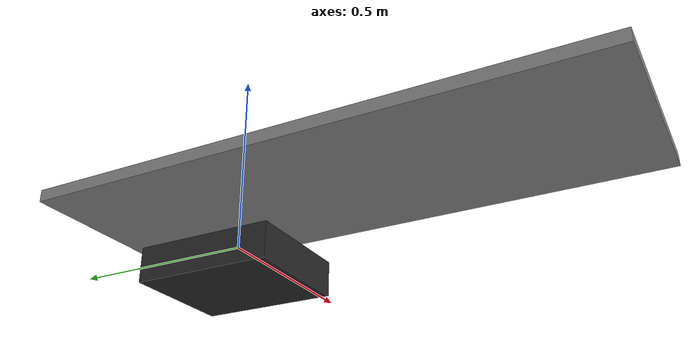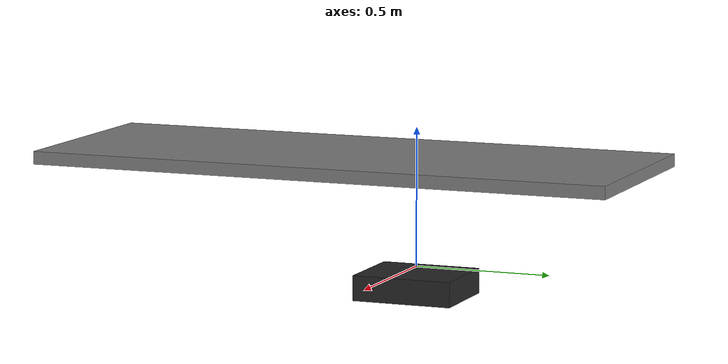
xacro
<?xml version="1.0" encoding="utf-8"?>
<robot xmlns:xacro="http://www.ros.org/wiki/xacro" name="panda">
  <xacro:property name="in2m" value="0.0254"/>
  <xacro:property name="ft2m" value="0.3048"/>
  <xacro:property name="tablex" value="${0.7620}"/>
  <xacro:property name="tabley" value="${2.0320}"/>
  <xacro:property name="tablez" value="${1.75*in2m}"/>
  <xacro:property name="pandax" value="0"/>
  <xacro:property name="panday" value="0"/>
  <xacro:property name="pandaz" value="0"/>
  <xacro:property name="pandamountx" value="${1*ft2m}"/>
  <xacro:property name="pandamounty" value="${1.2*ft2m}"/>
  <xacro:property name="pandamountz" value="${0.3*ft2m}"/>
  <xacro:property name="pandamountzoffset" value="${1*in2m}"/>
  <link name="table">
    <visual>
      <origin xyz="0.6 0.0 0.47" rpy="0 0 0"/>
      <geometry>
        <box size="${tablex} ${tabley} ${tablez}"/>
      </geometry>
      <material name="grey">
        <color rgba="0.5 0.5 0.5 1.0"/>
      </material>
    </visual>
    <visual>
      <origin xyz="${pandax} ${panday} ${-pandamountz+pandamountzoffset}" rpy="0 0 0"/>
      <geometry>
        <box size="${pandamountx} ${pandamounty} ${pandamountz}"/>
      </geometry>
      <material name="black">
        <color rgba="0.15 0.15 0.15 1.0"/>
      </material>
    </visual>
  </link>
</robot>
